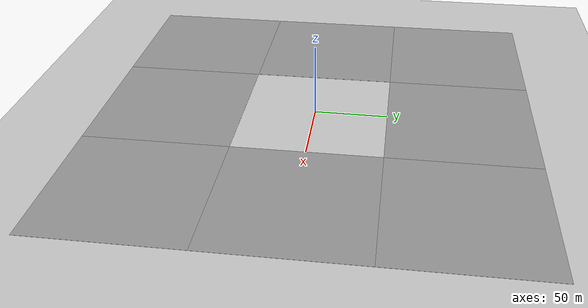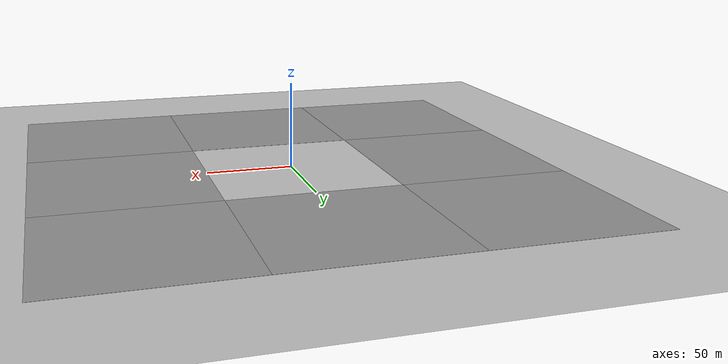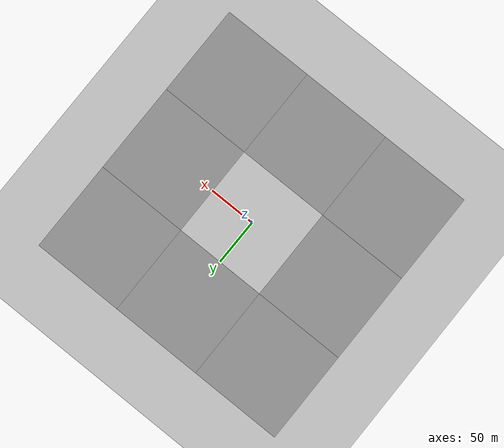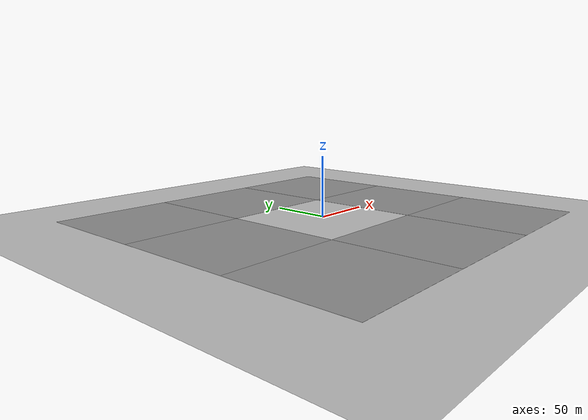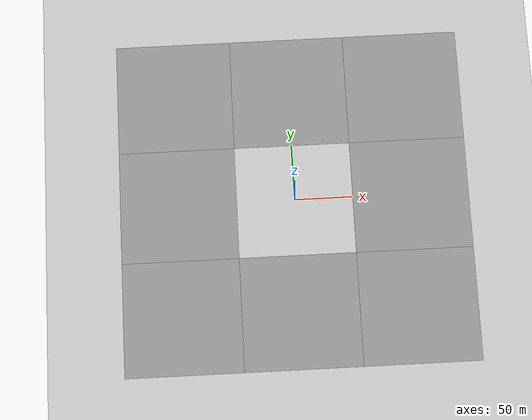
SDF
<sdf version="1.6">
 <world name="default">
  <light name="sun" type="directional">
   <pose>0 0 10 0 -0 0</pose>
   <diffuse>0.8 0.8 0.8 1</diffuse>
   <specular>0.2 0.2 0.2 1</specular>
   <attenuation>
    <range>1000</range>
    <constant>0.9</constant>
    <linear>0.01</linear>
    <quadratic>0.001</quadratic>
   </attenuation>
   <direction>-0.5 0.1 -0.9</direction>
  </light>
  <model name="ground_plane">
   <static>1</static>
   <link name="link">
    <collision name="collision">
     <geometry><plane><normal>0 0 1</normal><size>100 100</size></plane></geometry>
     <surface>
      <contact><collide_bitmask>65535</collide_bitmask></contact>
      <friction><ode><mu>100</mu><mu2>50</mu2></ode></friction>
     </surface>
    </collision>
    <visual name="visual">
     <cast_shadows>0</cast_shadows>
     <geometry><plane><normal>0 0 1</normal><size>100 100</size></plane></geometry>
     <material>
      <script><uri>file://media/materials/scripts/gazebo.material</uri><name>Gazebo/Grey</name></script>
     </material>
    </visual>
   </link>
  </model>
  <gravity>0 0 -9.8</gravity>
  <magnetic_field>6e-06 2.3e-05 -4.2e-05</magnetic_field>
  <atmosphere type="adiabatic"/>
  <physics name="default_physics" default="0" type="ode">
   <max_step_size>0.001</max_step_size>
   <real_time_factor>1</real_time_factor>
   <real_time_update_rate>1000</real_time_update_rate>
  </physics>
  <scene><ambient>0.4 0.4 0.4 1</ambient><background>0.7 0.7 0.7 1</background><shadows>1</shadows></scene>
  <audio><device>default</device></audio>
  <spherical_coordinates>
   <surface_model>EARTH_WGS84</surface_model>
   <latitude_deg>0</latitude_deg>
   <longitude_deg>0</longitude_deg>
   <elevation>0</elevation>
   <heading_deg>0</heading_deg>
  </spherical_coordinates>
  <model name="ground_plane_0">
   <static>1</static>
   <link name="link">
    <collision name="collision">
     <geometry><plane><normal>0 0 1</normal><size>100 100</size></plane></geometry>
     <surface>
      <contact><collide_bitmask>65535</collide_bitmask></contact>
      <friction><ode><mu>100</mu><mu2>50</mu2></ode></friction>
     </surface>
    </collision>
    <visual name="visual">
     <cast_shadows>0</cast_shadows>
     <geometry><plane><normal>0 0 1</normal><size>100 100</size></plane></geometry>
     <material>
      <script><uri>file://media/materials/scripts/gazebo.material</uri><name>Gazebo/Grey</name></script>
     </material>
    </visual>
   </link>
   <pose>0 -100 0 0 -0 0</pose>
  </model>
  <model name="ground_plane_1">
   <static>1</static>
   <link name="link">
    <collision name="collision">
     <geometry><plane><normal>0 0 1</normal><size>100 100</size></plane></geometry>
     <surface>
      <contact><collide_bitmask>65535</collide_bitmask></contact>
      <friction><ode><mu>100</mu><mu2>50</mu2></ode></friction>
     </surface>
    </collision>
    <visual name="visual">
     <cast_shadows>0</cast_shadows>
     <geometry><plane><normal>0 0 1</normal><size>100 100</size></plane></geometry>
     <material>
      <script><uri>file://media/materials/scripts/gazebo.material</uri><name>Gazebo/Grey</name></script>
     </material>
    </visual>
   </link>
   <pose>-100 0 0 0 -0 0</pose>
  </model>
  <model name="ground_plane_2">
   <static>1</static>
   <link name="link">
    <collision name="collision">
     <geometry><plane><normal>0 0 1</normal><size>100 100</size></plane></geometry>
     <surface>
      <contact><collide_bitmask>65535</collide_bitmask></contact>
      <friction><ode><mu>100</mu><mu2>50</mu2></ode></friction>
     </surface>
    </collision>
    <visual name="visual">
     <cast_shadows>0</cast_shadows>
     <geometry><plane><normal>0 0 1</normal><size>100 100</size></plane></geometry>
     <material>
      <script><uri>file://media/materials/scripts/gazebo.material</uri><name>Gazebo/Grey</name></script>
     </material>
    </visual>
   </link>
   <pose>-100 -100 0 0 -0 0</pose>
  </model>
  <model name="ground_plane_3">
   <static>1</static>
   <link name="link">
    <collision name="collision">
     <geometry><plane><normal>0 0 1</normal><size>100 100</size></plane></geometry>
     <surface>
      <contact><collide_bitmask>65535</collide_bitmask></contact>
      <friction><ode><mu>100</mu><mu2>50</mu2></ode></friction>
     </surface>
    </collision>
    <visual name="visual">
     <cast_shadows>0</cast_shadows>
     <geometry><plane><normal>0 0 1</normal><size>100 100</size></plane></geometry>
     <material>
      <script><uri>file://media/materials/scripts/gazebo.material</uri><name>Gazebo/Grey</name></script>
     </material>
    </visual>
   </link>
   <pose>-100 100 0 0 -0 0</pose>
  </model>
  <model name="ground_plane_4">
   <static>1</static>
   <link name="link">
    <collision name="collision">
     <geometry><plane><normal>0 0 1</normal><size>100 100</size></plane></geometry>
     <surface>
      <contact><collide_bitmask>65535</collide_bitmask></contact>
      <friction><ode><mu>100</mu><mu2>50</mu2></ode></friction>
     </surface>
    </collision>
    <visual name="visual">
     <cast_shadows>0</cast_shadows>
     <geometry><plane><normal>0 0 1</normal><size>100 100</size></plane></geometry>
     <material>
      <script><uri>file://media/materials/scripts/gazebo.material</uri><name>Gazebo/Grey</name></script>
     </material>
    </visual>
   </link>
   <pose>0 100 0 0 -0 0</pose>
  </model>
  <model name="ground_plane_5">
   <static>1</static>
   <link name="link">
    <collision name="collision">
     <geometry><plane><normal>0 0 1</normal><size>100 100</size></plane></geometry>
     <surface>
      <contact><collide_bitmask>65535</collide_bitmask></contact>
      <friction><ode><mu>100</mu><mu2>50</mu2></ode></friction>
     </surface>
    </collision>
    <visual name="visual">
     <cast_shadows>0</cast_shadows>
     <geometry><plane><normal>0 0 1</normal><size>100 100</size></plane></geometry>
     <material>
      <script><uri>file://media/materials/scripts/gazebo.material</uri><name>Gazebo/Grey</name></script>
     </material>
    </visual>
   </link>
   <pose>100 0 0 0 -0 0</pose>
  </model>
  <model name="ground_plane_6">
   <static>1</static>
   <link name="link">
    <collision name="collision">
     <geometry><plane><normal>0 0 1</normal><size>100 100</size></plane></geometry>
     <surface>
      <contact><collide_bitmask>65535</collide_bitmask></contact>
      <friction><ode><mu>100</mu><mu2>50</mu2></ode></friction>
     </surface>
    </collision>
    <visual name="visual">
     <cast_shadows>0</cast_shadows>
     <geometry><plane><normal>0 0 1</normal><size>100 100</size></plane></geometry>
     <material>
      <script><uri>file://media/materials/scripts/gazebo.material</uri><name>Gazebo/Grey</name></script>
     </material>
    </visual>
   </link>
   <pose>100 100 0 0 -0 0</pose>
  </model>
  <model name="ground_plane_7">
   <static>1</static>
   <link name="link">
    <collision name="collision">
     <geometry><plane><normal>0 0 1</normal><size>100 100</size></plane></geometry>
     <surface>
      <contact><collide_bitmask>65535</collide_bitmask></contact>
      <friction><ode><mu>100</mu><mu2>50</mu2></ode></friction>
     </surface>
    </collision>
    <visual name="visual">
     <cast_shadows>0</cast_shadows>
     <geometry><plane><normal>0 0 1</normal><size>100 100</size></plane></geometry>
     <material>
      <script><uri>file://media/materials/scripts/gazebo.material</uri><name>Gazebo/Grey</name></script>
     </material>
    </visual>
   </link>
   <pose>100 -100 0 0 -0 0</pose>
  </model>
 </world>
</sdf>
